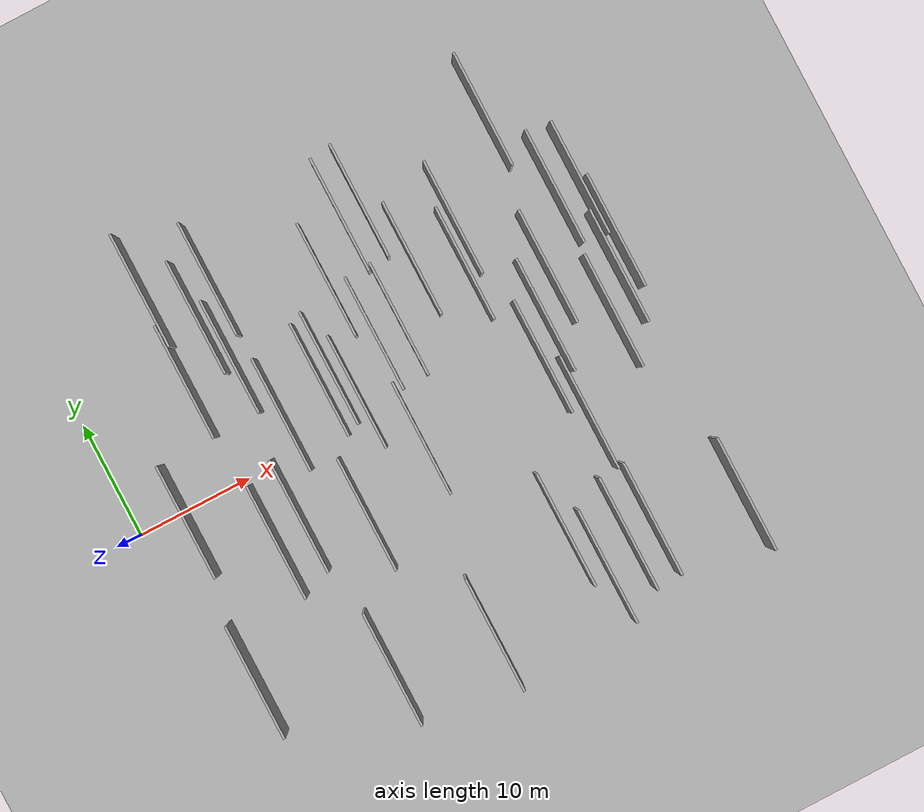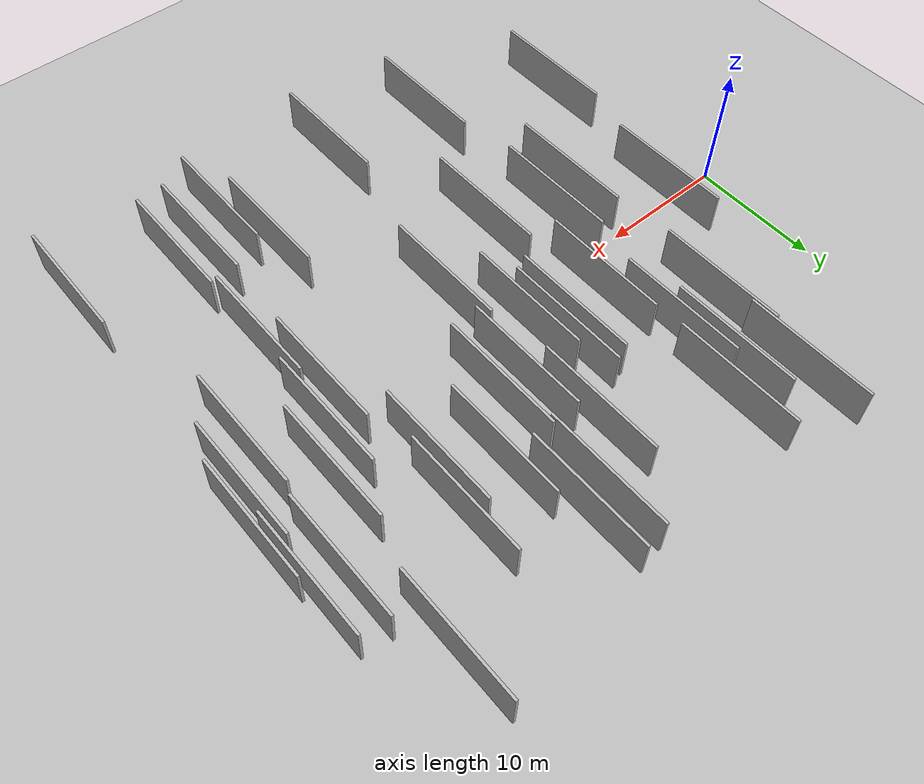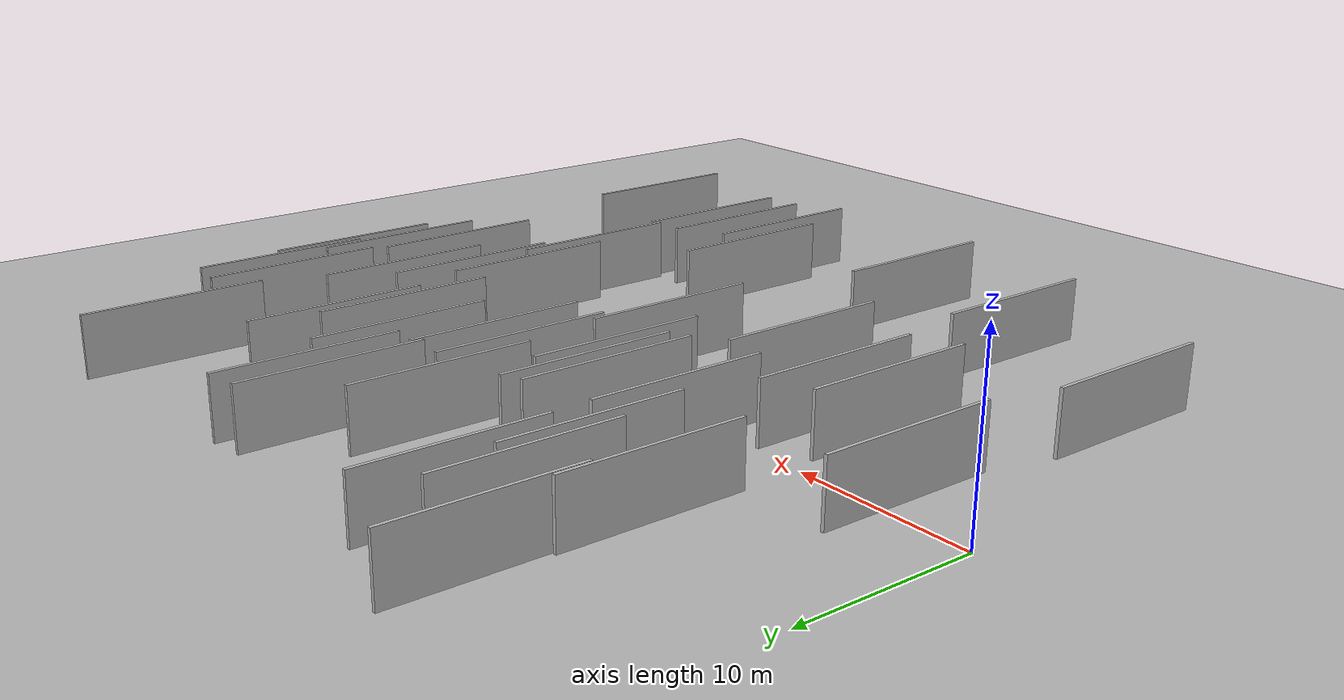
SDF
<?xml version="1.0" encoding="utf-8"?>

<sdf version="1.6">

   <world name="default">

      <gui fullscreen="0">

         <camera name="user_camera">

            <pose>-15 0 4.57585 0 0 0</pose>

            <view_controller>orbit</view_controller>

         </camera>

      </gui>

      <scene>

         <sky>

           <clouds>

             <speed>12</speed>

           </clouds>

         </sky>

         <ambient>0.4 0.4 0.4 1</ambient>

         <background>0.7 0.7 0.7 1</background>

         <shadows>1</shadows>

      </scene>

      <gravity>0 0 -9.8066</gravity>

      <magnetic_field>6e-06 2.3e-05 -4.2e-05</magnetic_field>

      <physics default="0" name="default_physics" type="ode">

         <ode>

            <solver>

               <type>quick</type>

               <iters>10</iters>

               <sor>1.0</sor>

               <use_dynamic_moi_rescaling>0</use_dynamic_moi_rescaling>

            </solver>

            <constraints>

               <cfm>0</cfm>

               <erp>0.2</erp>

               <contact_max_correcting_vel>100</contact_max_correcting_vel>

               <contact_surface_layer>0.001</contact_surface_layer>

            </constraints>

         </ode>

         <max_step_size>0.004</max_step_size>

         <real_time_factor>1</real_time_factor>

         <real_time_update_rate>250</real_time_update_rate>

      </physics>

      <light name="sun" type="directional">

         <cast_shadows>1</cast_shadows>

         <pose>0 0 10 0 0 0</pose>

         <diffuse>0.8 0.8 0.8 1</diffuse>

         <specular>0.2 0.2 0.2 1</specular>

         <attenuation>

            <range>1000</range>

            <constant>0.9</constant>

            <linear>0.01</linear>

            <quadratic>0.001</quadratic>

         </attenuation>

         <direction>-0.5 0.1 -0.9</direction>

      </light>

      <include>

         <name>ground_plane_1</name>

         <uri>model://HANNAS_ground_plane</uri>

         <pose>0 0 0  0 0 0</pose>

      </include>

      <include>

         <name>ground_plane_2</name>

         <uri>model://HANNAS_ground_plane</uri>

         <pose>100 0 0  0 0 0</pose>

      </include>

      <model name="HANNAS_wall_1">

         <static>1</static>

         <pose frame="">44.4361 -19.3445 0.0 0.000000 0.000000 1.570796</pose>

         <link name="link">

            <pose frame="">0 0 2.00 0 0 0</pose>

            <collision name="collision">

               <geometry>

                  <box>

                     <size>10.00 0.2 4.00</size>

                  </box>

               </geometry>

               <max_contacts>10</max_contacts>

               <surface>

                  <contact>

                     <ode/>

                  </contact>

                  <bounce/>

                  <friction>

                     <torsional>

                        <ode/>

                     </torsional>

                     <ode/>

                  </friction>

               </surface>

            </collision>

            <visual name="visual">

               <cast_shadows>0</cast_shadows>

               <geometry>

                  <box>

                     <size>10.00 0.2 4.00</size>

                  </box>

               </geometry>

               <material>

                  <script>

                     <uri>model://HANNAS_wall/materials/scripts</uri>

                     <uri>model://HANNAS_wall/materials/textures</uri>

                     <name>vrc/HANNAS_wall</name>

                  </script>

               </material>

            </visual>

            <self_collide>0</self_collide>

            <enable_wind>0</enable_wind>

            <kinematic>0</kinematic>

         </link>

      </model>

      <model name="HANNAS_wall_2">

         <static>1</static>

         <pose frame="">12.5489 13.1491 0.0 0.000000 0.000000 1.570796</pose>

         <link name="link">

            <pose frame="">0 0 2.00 0 0 0</pose>

            <collision name="collision">

               <geometry>

                  <box>

                     <size>10.00 0.2 4.00</size>

                  </box>

               </geometry>

               <max_contacts>10</max_contacts>

               <surface>

                  <contact>

                     <ode/>

                  </contact>

                  <bounce/>

                  <friction>

                     <torsional>

                        <ode/>

                     </torsional>

                     <ode/>

                  </friction>

               </surface>

            </collision>

            <visual name="visual">

               <cast_shadows>0</cast_shadows>

               <geometry>

                  <box>

                     <size>10.00 0.2 4.00</size>

                  </box>

               </geometry>

               <material>

                  <script>

                     <uri>model://HANNAS_wall/materials/scripts</uri>

                     <uri>model://HANNAS_wall/materials/textures</uri>

                     <name>vrc/HANNAS_wall</name>

                  </script>

               </material>

            </visual>

            <self_collide>0</self_collide>

            <enable_wind>0</enable_wind>

            <kinematic>0</kinematic>

         </link>

      </model>

      <model name="HANNAS_wall_3">

         <static>1</static>

         <pose frame="">36.4900 -7.8913 0.0 0.000000 0.000000 1.570796</pose>

         <link name="link">

            <pose frame="">0 0 2.00 0 0 0</pose>

            <collision name="collision">

               <geometry>

                  <box>

                     <size>10.00 0.2 4.00</size>

                  </box>

               </geometry>

               <max_contacts>10</max_contacts>

               <surface>

                  <contact>

                     <ode/>

                  </contact>

                  <bounce/>

                  <friction>

                     <torsional>

                        <ode/>

                     </torsional>

                     <ode/>

                  </friction>

               </surface>

            </collision>

            <visual name="visual">

               <cast_shadows>0</cast_shadows>

               <geometry>

                  <box>

                     <size>10.00 0.2 4.00</size>

                  </box>

               </geometry>

               <material>

                  <script>

                     <uri>model://HANNAS_wall/materials/scripts</uri>

                     <uri>model://HANNAS_wall/materials/textures</uri>

                     <name>vrc/HANNAS_wall</name>

                  </script>

               </material>

            </visual>

            <self_collide>0</self_collide>

            <enable_wind>0</enable_wind>

            <kinematic>0</kinematic>

         </link>

      </model>

      <model name="HANNAS_wall_4">

         <static>1</static>

         <pose frame="">40.1889 17.0929 0.0 0.000000 0.000000 1.570796</pose>

         <link name="link">

            <pose frame="">0 0 2.00 0 0 0</pose>

            <collision name="collision">

               <geometry>

                  <box>

                     <size>10.00 0.2 4.00</size>

                  </box>

               </geometry>

               <max_contacts>10</max_contacts>

               <surface>

                  <contact>

                     <ode/>

                  </contact>

                  <bounce/>

                  <friction>

                     <torsional>

                        <ode/>

                     </torsional>

                     <ode/>

                  </friction>

               </surface>

            </collision>

            <visual name="visual">

               <cast_shadows>0</cast_shadows>

               <geometry>

                  <box>

                     <size>10.00 0.2 4.00</size>

                  </box>

               </geometry>

               <material>

                  <script>

                     <uri>model://HANNAS_wall/materials/scripts</uri>

                     <uri>model://HANNAS_wall/materials/textures</uri>

                     <name>vrc/HANNAS_wall</name>

                  </script>

               </material>

            </visual>

            <self_collide>0</self_collide>

            <enable_wind>0</enable_wind>

            <kinematic>0</kinematic>

         </link>

      </model>

      <model name="HANNAS_wall_5">

         <static>1</static>

         <pose frame="">35.3129 -2.3083 0.0 0.000000 0.000000 1.570796</pose>

         <link name="link">

            <pose frame="">0 0 2.00 0 0 0</pose>

            <collision name="collision">

               <geometry>

                  <box>

                     <size>10.00 0.2 4.00</size>

                  </box>

               </geometry>

               <max_contacts>10</max_contacts>

               <surface>

                  <contact>

                     <ode/>

                  </contact>

                  <bounce/>

                  <friction>

                     <torsional>

                        <ode/>

                     </torsional>

                     <ode/>

                  </friction>

               </surface>

            </collision>

            <visual name="visual">

               <cast_shadows>0</cast_shadows>

               <geometry>

                  <box>

                     <size>10.00 0.2 4.00</size>

                  </box>

               </geometry>

               <material>

                  <script>

                     <uri>model://HANNAS_wall/materials/scripts</uri>

                     <uri>model://HANNAS_wall/materials/textures</uri>

                     <name>vrc/HANNAS_wall</name>

                  </script>

               </material>

            </visual>

            <self_collide>0</self_collide>

            <enable_wind>0</enable_wind>

            <kinematic>0</kinematic>

         </link>

      </model>

      <model name="HANNAS_wall_6">

         <static>1</static>

         <pose frame="">26.3322 15.0042 0.0 0.000000 0.000000 1.570796</pose>

         <link name="link">

            <pose frame="">0 0 2.00 0 0 0</pose>

            <collision name="collision">

               <geometry>

                  <box>

                     <size>10.00 0.2 4.00</size>

                  </box>

               </geometry>

               <max_contacts>10</max_contacts>

               <surface>

                  <contact>

                     <ode/>

                  </contact>

                  <bounce/>

                  <friction>

                     <torsional>

                        <ode/>

                     </torsional>

                     <ode/>

                  </friction>

               </surface>

            </collision>

            <visual name="visual">

               <cast_shadows>0</cast_shadows>

               <geometry>

                  <box>

                     <size>10.00 0.2 4.00</size>

                  </box>

               </geometry>

               <material>

                  <script>

                     <uri>model://HANNAS_wall/materials/scripts</uri>

                     <uri>model://HANNAS_wall/materials/textures</uri>

                     <name>vrc/HANNAS_wall</name>

                  </script>

               </material>

            </visual>

            <self_collide>0</self_collide>

            <enable_wind>0</enable_wind>

            <kinematic>0</kinematic>

         </link>

      </model>

      <model name="HANNAS_wall_7">

         <static>1</static>

         <pose frame="">45.0312 3.8219 0.0 0.000000 0.000000 1.570796</pose>

         <link name="link">

            <pose frame="">0 0 2.00 0 0 0</pose>

            <collision name="collision">

               <geometry>

                  <box>

                     <size>10.00 0.2 4.00</size>

                  </box>

               </geometry>

               <max_contacts>10</max_contacts>

               <surface>

                  <contact>

                     <ode/>

                  </contact>

                  <bounce/>

                  <friction>

                     <torsional>

                        <ode/>

                     </torsional>

                     <ode/>

                  </friction>

               </surface>

            </collision>

            <visual name="visual">

               <cast_shadows>0</cast_shadows>

               <geometry>

                  <box>

                     <size>10.00 0.2 4.00</size>

                  </box>

               </geometry>

               <material>

                  <script>

                     <uri>model://HANNAS_wall/materials/scripts</uri>

                     <uri>model://HANNAS_wall/materials/textures</uri>

                     <name>vrc/HANNAS_wall</name>

                  </script>

               </material>

            </visual>

            <self_collide>0</self_collide>

            <enable_wind>0</enable_wind>

            <kinematic>0</kinematic>

         </link>

      </model>

      <model name="HANNAS_wall_8">

         <static>1</static>

         <pose frame="">28.2191 15.3201 0.0 0.000000 0.000000 1.570796</pose>

         <link name="link">

            <pose frame="">0 0 2.00 0 0 0</pose>

            <collision name="collision">

               <geometry>

                  <box>

                     <size>10.00 0.2 4.00</size>

                  </box>

               </geometry>

               <max_contacts>10</max_contacts>

               <surface>

                  <contact>

                     <ode/>

                  </contact>

                  <bounce/>

                  <friction>

                     <torsional>

                        <ode/>

                     </torsional>

                     <ode/>

                  </friction>

               </surface>

            </collision>

            <visual name="visual">

               <cast_shadows>0</cast_shadows>

               <geometry>

                  <box>

                     <size>10.00 0.2 4.00</size>

                  </box>

               </geometry>

               <material>

                  <script>

                     <uri>model://HANNAS_wall/materials/scripts</uri>

                     <uri>model://HANNAS_wall/materials/textures</uri>

                     <name>vrc/HANNAS_wall</name>

                  </script>

               </material>

            </visual>

            <self_collide>0</self_collide>

            <enable_wind>0</enable_wind>

            <kinematic>0</kinematic>

         </link>

      </model>

      <model name="HANNAS_wall_9">

         <static>1</static>

         <pose frame="">37.0206 0.4923 0.0 0.000000 0.000000 1.570796</pose>

         <link name="link">

            <pose frame="">0 0 2.00 0 0 0</pose>

            <collision name="collision">

               <geometry>

                  <box>

                     <size>10.00 0.2 4.00</size>

                  </box>

               </geometry>

               <max_contacts>10</max_contacts>

               <surface>

                  <contact>

                     <ode/>

                  </contact>

                  <bounce/>

                  <friction>

                     <torsional>

                        <ode/>

                     </torsional>

                     <ode/>

                  </friction>

               </surface>

            </collision>

            <visual name="visual">

               <cast_shadows>0</cast_shadows>

               <geometry>

                  <box>

                     <size>10.00 0.2 4.00</size>

                  </box>

               </geometry>

               <material>

                  <script>

                     <uri>model://HANNAS_wall/materials/scripts</uri>

                     <uri>model://HANNAS_wall/materials/textures</uri>

                     <name>vrc/HANNAS_wall</name>

                  </script>

               </material>

            </visual>

            <self_collide>0</self_collide>

            <enable_wind>0</enable_wind>

            <kinematic>0</kinematic>

         </link>

      </model>

      <model name="HANNAS_wall_10">

         <static>1</static>

         <pose frame="">26.6462 5.5807 0.0 0.000000 0.000000 1.570796</pose>

         <link name="link">

            <pose frame="">0 0 2.00 0 0 0</pose>

            <collision name="collision">

               <geometry>

                  <box>

                     <size>10.00 0.2 4.00</size>

                  </box>

               </geometry>

               <max_contacts>10</max_contacts>

               <surface>

                  <contact>

                     <ode/>

                  </contact>

                  <bounce/>

                  <friction>

                     <torsional>

                        <ode/>

                     </torsional>

                     <ode/>

                  </friction>

               </surface>

            </collision>

            <visual name="visual">

               <cast_shadows>0</cast_shadows>

               <geometry>

                  <box>

                     <size>10.00 0.2 4.00</size>

                  </box>

               </geometry>

               <material>

                  <script>

                     <uri>model://HANNAS_wall/materials/scripts</uri>

                     <uri>model://HANNAS_wall/materials/textures</uri>

                     <name>vrc/HANNAS_wall</name>

                  </script>

               </material>

            </visual>

            <self_collide>0</self_collide>

            <enable_wind>0</enable_wind>

            <kinematic>0</kinematic>

         </link>

      </model>

      <model name="HANNAS_wall_11">

         <static>1</static>

         <pose frame="">17.2393 -6.8475 0.0 0.000000 0.000000 1.570796</pose>

         <link name="link">

            <pose frame="">0 0 2.00 0 0 0</pose>

            <collision name="collision">

               <geometry>

                  <box>

                     <size>10.00 0.2 4.00</size>

                  </box>

               </geometry>

               <max_contacts>10</max_contacts>

               <surface>

                  <contact>

                     <ode/>

                  </contact>

                  <bounce/>

                  <friction>

                     <torsional>

                        <ode/>

                     </torsional>

                     <ode/>

                  </friction>

               </surface>

            </collision>

            <visual name="visual">

               <cast_shadows>0</cast_shadows>

               <geometry>

                  <box>

                     <size>10.00 0.2 4.00</size>

                  </box>

               </geometry>

               <material>

                  <script>

                     <uri>model://HANNAS_wall/materials/scripts</uri>

                     <uri>model://HANNAS_wall/materials/textures</uri>

                     <name>vrc/HANNAS_wall</name>

                  </script>

               </material>

            </visual>

            <self_collide>0</self_collide>

            <enable_wind>0</enable_wind>

            <kinematic>0</kinematic>

         </link>

      </model>

      <model name="HANNAS_wall_12">

         <static>1</static>

         <pose frame="">9.3817 9.0859 0.0 0.000000 0.000000 1.570796</pose>

         <link name="link">

            <pose frame="">0 0 2.00 0 0 0</pose>

            <collision name="collision">

               <geometry>

                  <box>

                     <size>10.00 0.2 4.00</size>

                  </box>

               </geometry>

               <max_contacts>10</max_contacts>

               <surface>

                  <contact>

                     <ode/>

                  </contact>

                  <bounce/>

                  <friction>

                     <torsional>

                        <ode/>

                     </torsional>

                     <ode/>

                  </friction>

               </surface>

            </collision>

            <visual name="visual">

               <cast_shadows>0</cast_shadows>

               <geometry>

                  <box>

                     <size>10.00 0.2 4.00</size>

                  </box>

               </geometry>

               <material>

                  <script>

                     <uri>model://HANNAS_wall/materials/scripts</uri>

                     <uri>model://HANNAS_wall/materials/textures</uri>

                     <name>vrc/HANNAS_wall</name>

                  </script>

               </material>

            </visual>

            <self_collide>0</self_collide>

            <enable_wind>0</enable_wind>

            <kinematic>0</kinematic>

         </link>

      </model>

      <model name="HANNAS_wall_13">

         <static>1</static>

         <pose frame="">18.8730 4.2570 0.0 0.000000 0.000000 1.570796</pose>

         <link name="link">

            <pose frame="">0 0 2.00 0 0 0</pose>

            <collision name="collision">

               <geometry>

                  <box>

                     <size>10.00 0.2 4.00</size>

                  </box>

               </geometry>

               <max_contacts>10</max_contacts>

               <surface>

                  <contact>

                     <ode/>

                  </contact>

                  <bounce/>

                  <friction>

                     <torsional>

                        <ode/>

                     </torsional>

                     <ode/>

                  </friction>

               </surface>

            </collision>

            <visual name="visual">

               <cast_shadows>0</cast_shadows>

               <geometry>

                  <box>

                     <size>10.00 0.2 4.00</size>

                  </box>

               </geometry>

               <material>

                  <script>

                     <uri>model://HANNAS_wall/materials/scripts</uri>

                     <uri>model://HANNAS_wall/materials/textures</uri>

                     <name>vrc/HANNAS_wall</name>

                  </script>

               </material>

            </visual>

            <self_collide>0</self_collide>

            <enable_wind>0</enable_wind>

            <kinematic>0</kinematic>

         </link>

      </model>

      <model name="HANNAS_wall_14">

         <static>1</static>

         <pose frame="">3.2941 -14.4434 0.0 0.000000 0.000000 1.570796</pose>

         <link name="link">

            <pose frame="">0 0 2.00 0 0 0</pose>

            <collision name="collision">

               <geometry>

                  <box>

                     <size>10.00 0.2 4.00</size>

                  </box>

               </geometry>

               <max_contacts>10</max_contacts>

               <surface>

                  <contact>

                     <ode/>

                  </contact>

                  <bounce/>

                  <friction>

                     <torsional>

                        <ode/>

                     </torsional>

                     <ode/>

                  </friction>

               </surface>

            </collision>

            <visual name="visual">

               <cast_shadows>0</cast_shadows>

               <geometry>

                  <box>

                     <size>10.00 0.2 4.00</size>

                  </box>

               </geometry>

               <material>

                  <script>

                     <uri>model://HANNAS_wall/materials/scripts</uri>

                     <uri>model://HANNAS_wall/materials/textures</uri>

                     <name>vrc/HANNAS_wall</name>

                  </script>

               </material>

            </visual>

            <self_collide>0</self_collide>

            <enable_wind>0</enable_wind>

            <kinematic>0</kinematic>

         </link>

      </model>

      <model name="HANNAS_wall_15">

         <static>1</static>

         <pose frame="">44.4660 8.8187 0.0 0.000000 0.000000 1.570796</pose>

         <link name="link">

            <pose frame="">0 0 2.00 0 0 0</pose>

            <collision name="collision">

               <geometry>

                  <box>

                     <size>10.00 0.2 4.00</size>

                  </box>

               </geometry>

               <max_contacts>10</max_contacts>

               <surface>

                  <contact>

                     <ode/>

                  </contact>

                  <bounce/>

                  <friction>

                     <torsional>

                        <ode/>

                     </torsional>

                     <ode/>

                  </friction>

               </surface>

            </collision>

            <visual name="visual">

               <cast_shadows>0</cast_shadows>

               <geometry>

                  <box>

                     <size>10.00 0.2 4.00</size>

                  </box>

               </geometry>

               <material>

                  <script>

                     <uri>model://HANNAS_wall/materials/scripts</uri>

                     <uri>model://HANNAS_wall/materials/textures</uri>

                     <name>vrc/HANNAS_wall</name>

                  </script>

               </material>

            </visual>

            <self_collide>0</self_collide>

            <enable_wind>0</enable_wind>

            <kinematic>0</kinematic>

         </link>

      </model>

      <model name="HANNAS_wall_16">

         <static>1</static>

         <pose frame="">42.3598 9.1158 0.0 0.000000 0.000000 1.570796</pose>

         <link name="link">

            <pose frame="">0 0 2.00 0 0 0</pose>

            <collision name="collision">

               <geometry>

                  <box>

                     <size>10.00 0.2 4.00</size>

                  </box>

               </geometry>

               <max_contacts>10</max_contacts>

               <surface>

                  <contact>

                     <ode/>

                  </contact>

                  <bounce/>

                  <friction>

                     <torsional>

                        <ode/>

                     </torsional>

                     <ode/>

                  </friction>

               </surface>

            </collision>

            <visual name="visual">

               <cast_shadows>0</cast_shadows>

               <geometry>

                  <box>

                     <size>10.00 0.2 4.00</size>

                  </box>

               </geometry>

               <material>

                  <script>

                     <uri>model://HANNAS_wall/materials/scripts</uri>

                     <uri>model://HANNAS_wall/materials/textures</uri>

                     <name>vrc/HANNAS_wall</name>

                  </script>

               </material>

            </visual>

            <self_collide>0</self_collide>

            <enable_wind>0</enable_wind>

            <kinematic>0</kinematic>

         </link>

      </model>

      <model name="HANNAS_wall_17">

         <static>1</static>

         <pose frame="">24.4006 5.4926 0.0 0.000000 0.000000 1.570796</pose>

         <link name="link">

            <pose frame="">0 0 2.00 0 0 0</pose>

            <collision name="collision">

               <geometry>

                  <box>

                     <size>10.00 0.2 4.00</size>

                  </box>

               </geometry>

               <max_contacts>10</max_contacts>

               <surface>

                  <contact>

                     <ode/>

                  </contact>

                  <bounce/>

                  <friction>

                     <torsional>

                        <ode/>

                     </torsional>

                     <ode/>

                  </friction>

               </surface>

            </collision>

            <visual name="visual">

               <cast_shadows>0</cast_shadows>

               <geometry>

                  <box>

                     <size>10.00 0.2 4.00</size>

                  </box>

               </geometry>

               <material>

                  <script>

                     <uri>model://HANNAS_wall/materials/scripts</uri>

                     <uri>model://HANNAS_wall/materials/textures</uri>

                     <name>vrc/HANNAS_wall</name>

                  </script>

               </material>

            </visual>

            <self_collide>0</self_collide>

            <enable_wind>0</enable_wind>

            <kinematic>0</kinematic>

         </link>

      </model>

      <model name="HANNAS_wall_18">

         <static>1</static>

         <pose frame="">23.8431 -3.5345 0.0 0.000000 0.000000 1.570796</pose>

         <link name="link">

            <pose frame="">0 0 2.00 0 0 0</pose>

            <collision name="collision">

               <geometry>

                  <box>

                     <size>10.00 0.2 4.00</size>

                  </box>

               </geometry>

               <max_contacts>10</max_contacts>

               <surface>

                  <contact>

                     <ode/>

                  </contact>

                  <bounce/>

                  <friction>

                     <torsional>

                        <ode/>

                     </torsional>

                     <ode/>

                  </friction>

               </surface>

            </collision>

            <visual name="visual">

               <cast_shadows>0</cast_shadows>

               <geometry>

                  <box>

                     <size>10.00 0.2 4.00</size>

                  </box>

               </geometry>

               <material>

                  <script>

                     <uri>model://HANNAS_wall/materials/scripts</uri>

                     <uri>model://HANNAS_wall/materials/textures</uri>

                     <name>vrc/HANNAS_wall</name>

                  </script>

               </material>

            </visual>

            <self_collide>0</self_collide>

            <enable_wind>0</enable_wind>

            <kinematic>0</kinematic>

         </link>

      </model>

      <model name="HANNAS_wall_19">

         <static>1</static>

         <pose frame="">14.7741 15.3898 0.0 0.000000 0.000000 1.570796</pose>

         <link name="link">

            <pose frame="">0 0 2.00 0 0 0</pose>

            <collision name="collision">

               <geometry>

                  <box>

                     <size>10.00 0.2 4.00</size>

                  </box>

               </geometry>

               <max_contacts>10</max_contacts>

               <surface>

                  <contact>

                     <ode/>

                  </contact>

                  <bounce/>

                  <friction>

                     <torsional>

                        <ode/>

                     </torsional>

                     <ode/>

                  </friction>

               </surface>

            </collision>

            <visual name="visual">

               <cast_shadows>0</cast_shadows>

               <geometry>

                  <box>

                     <size>10.00 0.2 4.00</size>

                  </box>

               </geometry>

               <material>

                  <script>

                     <uri>model://HANNAS_wall/materials/scripts</uri>

                     <uri>model://HANNAS_wall/materials/textures</uri>

                     <name>vrc/HANNAS_wall</name>

                  </script>

               </material>

            </visual>

            <self_collide>0</self_collide>

            <enable_wind>0</enable_wind>

            <kinematic>0</kinematic>

         </link>

      </model>

      <model name="HANNAS_wall_20">

         <static>1</static>

         <pose frame="">41.9252 -1.6910 0.0 0.000000 0.000000 1.570796</pose>

         <link name="link">

            <pose frame="">0 0 2.00 0 0 0</pose>

            <collision name="collision">

               <geometry>

                  <box>

                     <size>10.00 0.2 4.00</size>

                  </box>

               </geometry>

               <max_contacts>10</max_contacts>

               <surface>

                  <contact>

                     <ode/>

                  </contact>

                  <bounce/>

                  <friction>

                     <torsional>

                        <ode/>

                     </torsional>

                     <ode/>

                  </friction>

               </surface>

            </collision>

            <visual name="visual">

               <cast_shadows>0</cast_shadows>

               <geometry>

                  <box>

                     <size>10.00 0.2 4.00</size>

                  </box>

               </geometry>

               <material>

                  <script>

                     <uri>model://HANNAS_wall/materials/scripts</uri>

                     <uri>model://HANNAS_wall/materials/textures</uri>

                     <name>vrc/HANNAS_wall</name>

                  </script>

               </material>

            </visual>

            <self_collide>0</self_collide>

            <enable_wind>0</enable_wind>

            <kinematic>0</kinematic>

         </link>

      </model>

      <model name="HANNAS_wall_21">

         <static>1</static>

         <pose frame="">21.0378 2.0630 0.0 0.000000 0.000000 1.570796</pose>

         <link name="link">

            <pose frame="">0 0 2.00 0 0 0</pose>

            <collision name="collision">

               <geometry>

                  <box>

                     <size>10.00 0.2 4.00</size>

                  </box>

               </geometry>

               <max_contacts>10</max_contacts>

               <surface>

                  <contact>

                     <ode/>

                  </contact>

                  <bounce/>

                  <friction>

                     <torsional>

                        <ode/>

                     </torsional>

                     <ode/>

                  </friction>

               </surface>

            </collision>

            <visual name="visual">

               <cast_shadows>0</cast_shadows>

               <geometry>

                  <box>

                     <size>10.00 0.2 4.00</size>

                  </box>

               </geometry>

               <material>

                  <script>

                     <uri>model://HANNAS_wall/materials/scripts</uri>

                     <uri>model://HANNAS_wall/materials/textures</uri>

                     <name>vrc/HANNAS_wall</name>

                  </script>

               </material>

            </visual>

            <self_collide>0</self_collide>

            <enable_wind>0</enable_wind>

            <kinematic>0</kinematic>

         </link>

      </model>

      <model name="HANNAS_wall_22">

         <static>1</static>

         <pose frame="">36.9870 -17.6509 0.0 0.000000 0.000000 1.570796</pose>

         <link name="link">

            <pose frame="">0 0 2.00 0 0 0</pose>

            <collision name="collision">

               <geometry>

                  <box>

                     <size>10.00 0.2 4.00</size>

                  </box>

               </geometry>

               <max_contacts>10</max_contacts>

               <surface>

                  <contact>

                     <ode/>

                  </contact>

                  <bounce/>

                  <friction>

                     <torsional>

                        <ode/>

                     </torsional>

                     <ode/>

                  </friction>

               </surface>

            </collision>

            <visual name="visual">

               <cast_shadows>0</cast_shadows>

               <geometry>

                  <box>

                     <size>10.00 0.2 4.00</size>

                  </box>

               </geometry>

               <material>

                  <script>

                     <uri>model://HANNAS_wall/materials/scripts</uri>

                     <uri>model://HANNAS_wall/materials/textures</uri>

                     <name>vrc/HANNAS_wall</name>

                  </script>

               </material>

            </visual>

            <self_collide>0</self_collide>

            <enable_wind>0</enable_wind>

            <kinematic>0</kinematic>

         </link>

      </model>

      <model name="HANNAS_wall_23">

         <static>1</static>

         <pose frame="">23.0285 10.9817 0.0 0.000000 0.000000 1.570796</pose>

         <link name="link">

            <pose frame="">0 0 2.00 0 0 0</pose>

            <collision name="collision">

               <geometry>

                  <box>

                     <size>10.00 0.2 4.00</size>

                  </box>

               </geometry>

               <max_contacts>10</max_contacts>

               <surface>

                  <contact>

                     <ode/>

                  </contact>

                  <bounce/>

                  <friction>

                     <torsional>

                        <ode/>

                     </torsional>

                     <ode/>

                  </friction>

               </surface>

            </collision>

            <visual name="visual">

               <cast_shadows>0</cast_shadows>

               <geometry>

                  <box>

                     <size>10.00 0.2 4.00</size>

                  </box>

               </geometry>

               <material>

                  <script>

                     <uri>model://HANNAS_wall/materials/scripts</uri>

                     <uri>model://HANNAS_wall/materials/textures</uri>

                     <name>vrc/HANNAS_wall</name>

                  </script>

               </material>

            </visual>

            <self_collide>0</self_collide>

            <enable_wind>0</enable_wind>

            <kinematic>0</kinematic>

         </link>

      </model>

      <model name="HANNAS_wall_24">

         <static>1</static>

         <pose frame="">33.2820 7.0538 0.0 0.000000 0.000000 1.570796</pose>

         <link name="link">

            <pose frame="">0 0 2.00 0 0 0</pose>

            <collision name="collision">

               <geometry>

                  <box>

                     <size>10.00 0.2 4.00</size>

                  </box>

               </geometry>

               <max_contacts>10</max_contacts>

               <surface>

                  <contact>

                     <ode/>

                  </contact>

                  <bounce/>

                  <friction>

                     <torsional>

                        <ode/>

                     </torsional>

                     <ode/>

                  </friction>

               </surface>

            </collision>

            <visual name="visual">

               <cast_shadows>0</cast_shadows>

               <geometry>

                  <box>

                     <size>10.00 0.2 4.00</size>

                  </box>

               </geometry>

               <material>

                  <script>

                     <uri>model://HANNAS_wall/materials/scripts</uri>

                     <uri>model://HANNAS_wall/materials/textures</uri>

                     <name>vrc/HANNAS_wall</name>

                  </script>

               </material>

            </visual>

            <self_collide>0</self_collide>

            <enable_wind>0</enable_wind>

            <kinematic>0</kinematic>

         </link>

      </model>

      <model name="HANNAS_wall_25">

         <static>1</static>

         <pose frame="">29.7813 9.3330 0.0 0.000000 0.000000 1.570796</pose>

         <link name="link">

            <pose frame="">0 0 2.00 0 0 0</pose>

            <collision name="collision">

               <geometry>

                  <box>

                     <size>10.00 0.2 4.00</size>

                  </box>

               </geometry>

               <max_contacts>10</max_contacts>

               <surface>

                  <contact>

                     <ode/>

                  </contact>

                  <bounce/>

                  <friction>

                     <torsional>

                        <ode/>

                     </torsional>

                     <ode/>

                  </friction>

               </surface>

            </collision>

            <visual name="visual">

               <cast_shadows>0</cast_shadows>

               <geometry>

                  <box>

                     <size>10.00 0.2 4.00</size>

                  </box>

               </geometry>

               <material>

                  <script>

                     <uri>model://HANNAS_wall/materials/scripts</uri>

                     <uri>model://HANNAS_wall/materials/textures</uri>

                     <name>vrc/HANNAS_wall</name>

                  </script>

               </material>

            </visual>

            <self_collide>0</self_collide>

            <enable_wind>0</enable_wind>

            <kinematic>0</kinematic>

         </link>

      </model>

      <model name="HANNAS_wall_26">

         <static>1</static>

         <pose frame="">38.9649 3.7812 0.0 0.000000 0.000000 1.570796</pose>

         <link name="link">

            <pose frame="">0 0 2.00 0 0 0</pose>

            <collision name="collision">

               <geometry>

                  <box>

                     <size>10.00 0.2 4.00</size>

                  </box>

               </geometry>

               <max_contacts>10</max_contacts>

               <surface>

                  <contact>

                     <ode/>

                  </contact>

                  <bounce/>

                  <friction>

                     <torsional>

                        <ode/>

                     </torsional>

                     <ode/>

                  </friction>

               </surface>

            </collision>

            <visual name="visual">

               <cast_shadows>0</cast_shadows>

               <geometry>

                  <box>

                     <size>10.00 0.2 4.00</size>

                  </box>

               </geometry>

               <material>

                  <script>

                     <uri>model://HANNAS_wall/materials/scripts</uri>

                     <uri>model://HANNAS_wall/materials/textures</uri>

                     <name>vrc/HANNAS_wall</name>

                  </script>

               </material>

            </visual>

            <self_collide>0</self_collide>

            <enable_wind>0</enable_wind>

            <kinematic>0</kinematic>

         </link>

      </model>

      <model name="HANNAS_wall_27">

         <static>1</static>

         <pose frame="">19.9759 4.7290 0.0 0.000000 0.000000 1.570796</pose>

         <link name="link">

            <pose frame="">0 0 2.00 0 0 0</pose>

            <collision name="collision">

               <geometry>

                  <box>

                     <size>10.00 0.2 4.00</size>

                  </box>

               </geometry>

               <max_contacts>10</max_contacts>

               <surface>

                  <contact>

                     <ode/>

                  </contact>

                  <bounce/>

                  <friction>

                     <torsional>

                        <ode/>

                     </torsional>

                     <ode/>

                  </friction>

               </surface>

            </collision>

            <visual name="visual">

               <cast_shadows>0</cast_shadows>

               <geometry>

                  <box>

                     <size>10.00 0.2 4.00</size>

                  </box>

               </geometry>

               <material>

                  <script>

                     <uri>model://HANNAS_wall/materials/scripts</uri>

                     <uri>model://HANNAS_wall/materials/textures</uri>

                     <name>vrc/HANNAS_wall</name>

                  </script>

               </material>

            </visual>

            <self_collide>0</self_collide>

            <enable_wind>0</enable_wind>

            <kinematic>0</kinematic>

         </link>

      </model>

      <model name="HANNAS_wall_28">

         <static>1</static>

         <pose frame="">32.1182 -19.3072 0.0 0.000000 0.000000 1.570796</pose>

         <link name="link">

            <pose frame="">0 0 2.00 0 0 0</pose>

            <collision name="collision">

               <geometry>

                  <box>

                     <size>10.00 0.2 4.00</size>

                  </box>

               </geometry>

               <max_contacts>10</max_contacts>

               <surface>

                  <contact>

                     <ode/>

                  </contact>

                  <bounce/>

                  <friction>

                     <torsional>

                        <ode/>

                     </torsional>

                     <ode/>

                  </friction>

               </surface>

            </collision>

            <visual name="visual">

               <cast_shadows>0</cast_shadows>

               <geometry>

                  <box>

                     <size>10.00 0.2 4.00</size>

                  </box>

               </geometry>

               <material>

                  <script>

                     <uri>model://HANNAS_wall/materials/scripts</uri>

                     <uri>model://HANNAS_wall/materials/textures</uri>

                     <name>vrc/HANNAS_wall</name>

                  </script>

               </material>

            </visual>

            <self_collide>0</self_collide>

            <enable_wind>0</enable_wind>

            <kinematic>0</kinematic>

         </link>

      </model>

      <model name="HANNAS_wall_29">

         <static>1</static>

         <pose frame="">34.7743 -17.8119 0.0 0.000000 0.000000 1.570796</pose>

         <link name="link">

            <pose frame="">0 0 2.00 0 0 0</pose>

            <collision name="collision">

               <geometry>

                  <box>

                     <size>10.00 0.2 4.00</size>

                  </box>

               </geometry>

               <max_contacts>10</max_contacts>

               <surface>

                  <contact>

                     <ode/>

                  </contact>

                  <bounce/>

                  <friction>

                     <torsional>

                        <ode/>

                     </torsional>

                     <ode/>

                  </friction>

               </surface>

            </collision>

            <visual name="visual">

               <cast_shadows>0</cast_shadows>

               <geometry>

                  <box>

                     <size>10.00 0.2 4.00</size>

                  </box>

               </geometry>

               <material>

                  <script>

                     <uri>model://HANNAS_wall/materials/scripts</uri>

                     <uri>model://HANNAS_wall/materials/textures</uri>

                     <name>vrc/HANNAS_wall</name>

                  </script>

               </material>

            </visual>

            <self_collide>0</self_collide>

            <enable_wind>0</enable_wind>

            <kinematic>0</kinematic>

         </link>

      </model>

      <model name="HANNAS_wall_30">

         <static>1</static>

         <pose frame="">13.4600 9.1635 0.0 0.000000 0.000000 1.570796</pose>

         <link name="link">

            <pose frame="">0 0 2.00 0 0 0</pose>

            <collision name="collision">

               <geometry>

                  <box>

                     <size>10.00 0.2 4.00</size>

                  </box>

               </geometry>

               <max_contacts>10</max_contacts>

               <surface>

                  <contact>

                     <ode/>

                  </contact>

                  <bounce/>

                  <friction>

                     <torsional>

                        <ode/>

                     </torsional>

                     <ode/>

                  </friction>

               </surface>

            </collision>

            <visual name="visual">

               <cast_shadows>0</cast_shadows>

               <geometry>

                  <box>

                     <size>10.00 0.2 4.00</size>

                  </box>

               </geometry>

               <material>

                  <script>

                     <uri>model://HANNAS_wall/materials/scripts</uri>

                     <uri>model://HANNAS_wall/materials/textures</uri>

                     <name>vrc/HANNAS_wall</name>

                  </script>

               </material>

            </visual>

            <self_collide>0</self_collide>

            <enable_wind>0</enable_wind>

            <kinematic>0</kinematic>

         </link>

      </model>

      <model name="HANNAS_wall_31">

         <static>1</static>

         <pose frame="">21.7577 -19.9403 0.0 0.000000 0.000000 1.570796</pose>

         <link name="link">

            <pose frame="">0 0 2.00 0 0 0</pose>

            <collision name="collision">

               <geometry>

                  <box>

                     <size>10.00 0.2 4.00</size>

                  </box>

               </geometry>

               <max_contacts>10</max_contacts>

               <surface>

                  <contact>

                     <ode/>

                  </contact>

                  <bounce/>

                  <friction>

                     <torsional>

                        <ode/>

                     </torsional>

                     <ode/>

                  </friction>

               </surface>

            </collision>

            <visual name="visual">

               <cast_shadows>0</cast_shadows>

               <geometry>

                  <box>

                     <size>10.00 0.2 4.00</size>

                  </box>

               </geometry>

               <material>

                  <script>

                     <uri>model://HANNAS_wall/materials/scripts</uri>

                     <uri>model://HANNAS_wall/materials/textures</uri>

                     <name>vrc/HANNAS_wall</name>

                  </script>

               </material>

            </visual>

            <self_collide>0</self_collide>

            <enable_wind>0</enable_wind>

            <kinematic>0</kinematic>

         </link>

      </model>

      <model name="HANNAS_wall_32">

         <static>1</static>

         <pose frame="">12.4375 -4.4764 0.0 0.000000 0.000000 1.570796</pose>

         <link name="link">

            <pose frame="">0 0 2.00 0 0 0</pose>

            <collision name="collision">

               <geometry>

                  <box>

                     <size>10.00 0.2 4.00</size>

                  </box>

               </geometry>

               <max_contacts>10</max_contacts>

               <surface>

                  <contact>

                     <ode/>

                  </contact>

                  <bounce/>

                  <friction>

                     <torsional>

                        <ode/>

                     </torsional>

                     <ode/>

                  </friction>

               </surface>

            </collision>

            <visual name="visual">

               <cast_shadows>0</cast_shadows>

               <geometry>

                  <box>

                     <size>10.00 0.2 4.00</size>

                  </box>

               </geometry>

               <material>

                  <script>

                     <uri>model://HANNAS_wall/materials/scripts</uri>

                     <uri>model://HANNAS_wall/materials/textures</uri>

                     <name>vrc/HANNAS_wall</name>

                  </script>

               </material>

            </visual>

            <self_collide>0</self_collide>

            <enable_wind>0</enable_wind>

            <kinematic>0</kinematic>

         </link>

      </model>

      <model name="HANNAS_wall_33">

         <static>1</static>

         <pose frame="">34.1472 10.6841 0.0 0.000000 0.000000 1.570796</pose>

         <link name="link">

            <pose frame="">0 0 2.00 0 0 0</pose>

            <collision name="collision">

               <geometry>

                  <box>

                     <size>10.00 0.2 4.00</size>

                  </box>

               </geometry>

               <max_contacts>10</max_contacts>

               <surface>

                  <contact>

                     <ode/>

                  </contact>

                  <bounce/>

                  <friction>

                     <torsional>

                        <ode/>

                     </torsional>

                     <ode/>

                  </friction>

               </surface>

            </collision>

            <visual name="visual">

               <cast_shadows>0</cast_shadows>

               <geometry>

                  <box>

                     <size>10.00 0.2 4.00</size>

                  </box>

               </geometry>

               <material>

                  <script>

                     <uri>model://HANNAS_wall/materials/scripts</uri>

                     <uri>model://HANNAS_wall/materials/textures</uri>

                     <name>vrc/HANNAS_wall</name>

                  </script>

               </material>

            </visual>

            <self_collide>0</self_collide>

            <enable_wind>0</enable_wind>

            <kinematic>0</kinematic>

         </link>

      </model>

      <model name="HANNAS_wall_34">

         <static>1</static>

         <pose frame="">13.3496 -18.5808 0.0 0.000000 0.000000 1.570796</pose>

         <link name="link">

            <pose frame="">0 0 2.00 0 0 0</pose>

            <collision name="collision">

               <geometry>

                  <box>

                     <size>10.00 0.2 4.00</size>

                  </box>

               </geometry>

               <max_contacts>10</max_contacts>

               <surface>

                  <contact>

                     <ode/>

                  </contact>

                  <bounce/>

                  <friction>

                     <torsional>

                        <ode/>

                     </torsional>

                     <ode/>

                  </friction>

               </surface>

            </collision>

            <visual name="visual">

               <cast_shadows>0</cast_shadows>

               <geometry>

                  <box>

                     <size>10.00 0.2 4.00</size>

                  </box>

               </geometry>

               <material>

                  <script>

                     <uri>model://HANNAS_wall/materials/scripts</uri>

                     <uri>model://HANNAS_wall/materials/textures</uri>

                     <name>vrc/HANNAS_wall</name>

                  </script>

               </material>

            </visual>

            <self_collide>0</self_collide>

            <enable_wind>0</enable_wind>

            <kinematic>0</kinematic>

         </link>

      </model>

      <model name="HANNAS_wall_35">

         <static>1</static>

         <pose frame="">43.9489 1.2194 0.0 0.000000 0.000000 1.570796</pose>

         <link name="link">

            <pose frame="">0 0 2.00 0 0 0</pose>

            <collision name="collision">

               <geometry>

                  <box>

                     <size>10.00 0.2 4.00</size>

                  </box>

               </geometry>

               <max_contacts>10</max_contacts>

               <surface>

                  <contact>

                     <ode/>

                  </contact>

                  <bounce/>

                  <friction>

                     <torsional>

                        <ode/>

                     </torsional>

                     <ode/>

                  </friction>

               </surface>

            </collision>

            <visual name="visual">

               <cast_shadows>0</cast_shadows>

               <geometry>

                  <box>

                     <size>10.00 0.2 4.00</size>

                  </box>

               </geometry>

               <material>

                  <script>

                     <uri>model://HANNAS_wall/materials/scripts</uri>

                     <uri>model://HANNAS_wall/materials/textures</uri>

                     <name>vrc/HANNAS_wall</name>

                  </script>

               </material>

            </visual>

            <self_collide>0</self_collide>

            <enable_wind>0</enable_wind>

            <kinematic>0</kinematic>

         </link>

      </model>

      <model name="HANNAS_wall_36">

         <static>1</static>

         <pose frame="">9.8980 -5.4899 0.0 0.000000 0.000000 1.570796</pose>

         <link name="link">

            <pose frame="">0 0 2.00 0 0 0</pose>

            <collision name="collision">

               <geometry>

                  <box>

                     <size>10.00 0.2 4.00</size>

                  </box>

               </geometry>

               <max_contacts>10</max_contacts>

               <surface>

                  <contact>

                     <ode/>

                  </contact>

                  <bounce/>

                  <friction>

                     <torsional>

                        <ode/>

                     </torsional>

                     <ode/>

                  </friction>

               </surface>

            </collision>

            <visual name="visual">

               <cast_shadows>0</cast_shadows>

               <geometry>

                  <box>

                     <size>10.00 0.2 4.00</size>

                  </box>

               </geometry>

               <material>

                  <script>

                     <uri>model://HANNAS_wall/materials/scripts</uri>

                     <uri>model://HANNAS_wall/materials/textures</uri>

                     <name>vrc/HANNAS_wall</name>

                  </script>

               </material>

            </visual>

            <self_collide>0</self_collide>

            <enable_wind>0</enable_wind>

            <kinematic>0</kinematic>

         </link>

      </model>

      <model name="HANNAS_wall_37">

         <static>1</static>

         <pose frame="">14.9374 3.2281 0.0 0.000000 0.000000 1.570796</pose>

         <link name="link">

            <pose frame="">0 0 2.00 0 0 0</pose>

            <collision name="collision">

               <geometry>

                  <box>

                     <size>10.00 0.2 4.00</size>

                  </box>

               </geometry>

               <max_contacts>10</max_contacts>

               <surface>

                  <contact>

                     <ode/>

                  </contact>

                  <bounce/>

                  <friction>

                     <torsional>

                        <ode/>

                     </torsional>

                     <ode/>

                  </friction>

               </surface>

            </collision>

            <visual name="visual">

               <cast_shadows>0</cast_shadows>

               <geometry>

                  <box>

                     <size>10.00 0.2 4.00</size>

                  </box>

               </geometry>

               <material>

                  <script>

                     <uri>model://HANNAS_wall/materials/scripts</uri>

                     <uri>model://HANNAS_wall/materials/textures</uri>

                     <name>vrc/HANNAS_wall</name>

                  </script>

               </material>

            </visual>

            <self_collide>0</self_collide>

            <enable_wind>0</enable_wind>

            <kinematic>0</kinematic>

         </link>

      </model>

      <model name="HANNAS_wall_38">

         <static>1</static>

         <pose frame="">30.5572 -15.2445 0.0 0.000000 0.000000 1.570796</pose>

         <link name="link">

            <pose frame="">0 0 2.00 0 0 0</pose>

            <collision name="collision">

               <geometry>

                  <box>

                     <size>10.00 0.2 4.00</size>

                  </box>

               </geometry>

               <max_contacts>10</max_contacts>

               <surface>

                  <contact>

                     <ode/>

                  </contact>

                  <bounce/>

                  <friction>

                     <torsional>

                        <ode/>

                     </torsional>

                     <ode/>

                  </friction>

               </surface>

            </collision>

            <visual name="visual">

               <cast_shadows>0</cast_shadows>

               <geometry>

                  <box>

                     <size>10.00 0.2 4.00</size>

                  </box>

               </geometry>

               <material>

                  <script>

                     <uri>model://HANNAS_wall/materials/scripts</uri>

                     <uri>model://HANNAS_wall/materials/textures</uri>

                     <name>vrc/HANNAS_wall</name>

                  </script>

               </material>

            </visual>

            <self_collide>0</self_collide>

            <enable_wind>0</enable_wind>

            <kinematic>0</kinematic>

         </link>

      </model>

      <model name="HANNAS_wall_39">

         <static>1</static>

         <pose frame="">4.3456 -0.7666 0.0 0.000000 0.000000 1.570796</pose>

         <link name="link">

            <pose frame="">0 0 2.00 0 0 0</pose>

            <collision name="collision">

               <geometry>

                  <box>

                     <size>10.00 0.2 4.00</size>

                  </box>

               </geometry>

               <max_contacts>10</max_contacts>

               <surface>

                  <contact>

                     <ode/>

                  </contact>

                  <bounce/>

                  <friction>

                     <torsional>

                        <ode/>

                     </torsional>

                     <ode/>

                  </friction>

               </surface>

            </collision>

            <visual name="visual">

               <cast_shadows>0</cast_shadows>

               <geometry>

                  <box>

                     <size>10.00 0.2 4.00</size>

                  </box>

               </geometry>

               <material>

                  <script>

                     <uri>model://HANNAS_wall/materials/scripts</uri>

                     <uri>model://HANNAS_wall/materials/textures</uri>

                     <name>vrc/HANNAS_wall</name>

                  </script>

               </material>

            </visual>

            <self_collide>0</self_collide>

            <enable_wind>0</enable_wind>

            <kinematic>0</kinematic>

         </link>

      </model>

      <model name="HANNAS_wall_40">

         <static>1</static>

         <pose frame="">9.6264 17.0640 0.0 0.000000 0.000000 1.570796</pose>

         <link name="link">

            <pose frame="">0 0 2.00 0 0 0</pose>

            <collision name="collision">

               <geometry>

                  <box>

                     <size>10.00 0.2 4.00</size>

                  </box>

               </geometry>

               <max_contacts>10</max_contacts>

               <surface>

                  <contact>

                     <ode/>

                  </contact>

                  <bounce/>

                  <friction>

                     <torsional>

                        <ode/>

                     </torsional>

                     <ode/>

                  </friction>

               </surface>

            </collision>

            <visual name="visual">

               <cast_shadows>0</cast_shadows>

               <geometry>

                  <box>

                     <size>10.00 0.2 4.00</size>

                  </box>

               </geometry>

               <material>

                  <script>

                     <uri>model://HANNAS_wall/materials/scripts</uri>

                     <uri>model://HANNAS_wall/materials/textures</uri>

                     <name>vrc/HANNAS_wall</name>

                  </script>

               </material>

            </visual>

            <self_collide>0</self_collide>

            <enable_wind>0</enable_wind>

            <kinematic>0</kinematic>

         </link>

      </model>

   </world>

</sdf>
